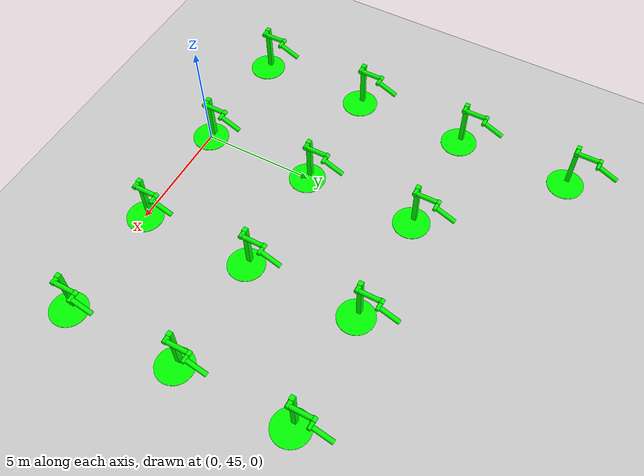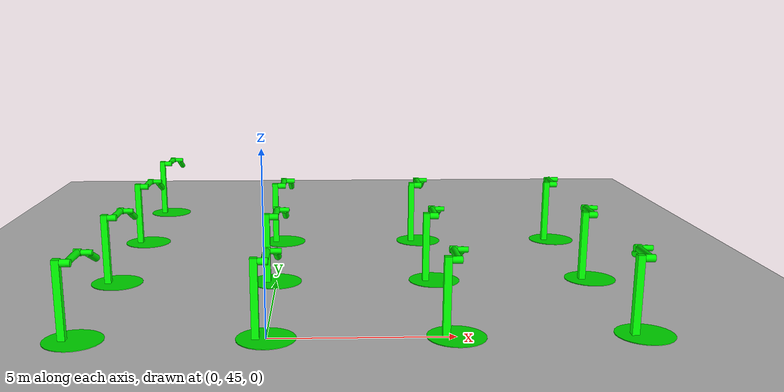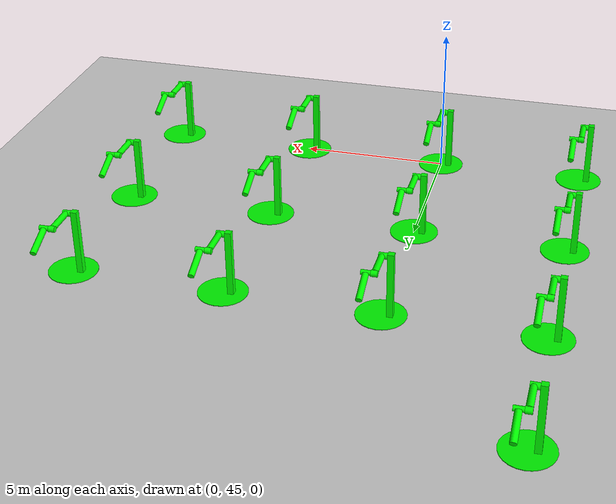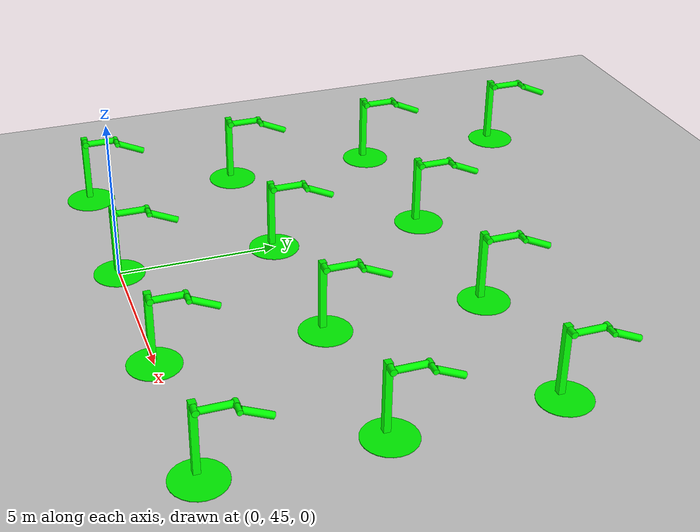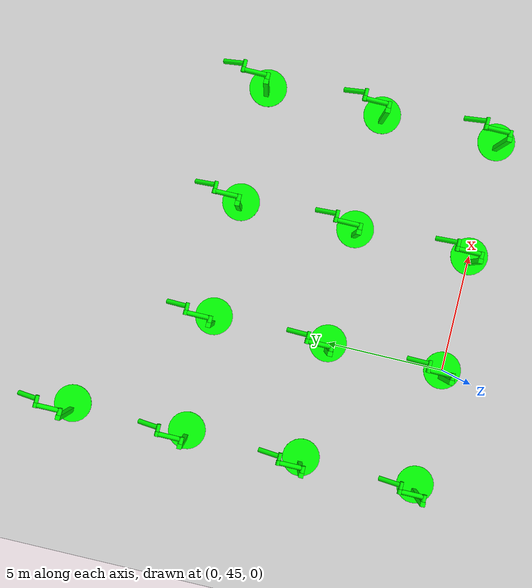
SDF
<sdf version="1.6">
 <world name="double_pendulums">
  <model name="ground_plane">
   <static>true</static>
   <link name="link">
    <collision name="collision">
     <geometry><plane><normal>0 0 1</normal><size>100 100</size></plane></geometry>
    </collision>
    <visual name="visual">
     <geometry><plane><normal>0 0 1</normal><size>100 100</size></plane></geometry>
     <material>
      <ambient>0.8 0.8 0.8 1</ambient>
      <diffuse>0.8 0.8 0.8 1</diffuse>
      <specular>0.8 0.8 0.8 1</specular>
     </material>
    </visual>
   </link>
  </model>
  <model name="dbl_pendulum_234">
   <pose>-5 45 0 0 0 0</pose>
   <link name="base">
    <inertial><mass>100</mass></inertial>
    <visual name="vis_plate_on_ground">
     <pose>0 0 0.01 0 0 0</pose>
     <geometry><cylinder><radius>0.8</radius><length>0.02</length></cylinder></geometry>
     <material><ambient>0 1 0 1</ambient><diffuse>0 1 0 1</diffuse><specular>0 1 0 1</specular></material>
    </visual>
    <visual name="vis_pole">
     <pose>-0.275 0 1.1 0 0 0</pose>
     <geometry><box><size>0.2 0.2 2.2</size></box></geometry>
     <material><ambient>0 1 0 1</ambient><diffuse>0 1 0 1</diffuse><specular>0 1 0 1</specular></material>
    </visual>
    <collision name="col_plate_on_ground">
     <pose>0 0 0.01 0 0 0</pose>
     <geometry><cylinder><radius>0.8</radius><length>0.02</length></cylinder></geometry>
    </collision>
    <collision name="col_pole">
     <pose>-0.275 0 1.1 0 0 0</pose>
     <geometry><box><size>0.2 0.2 2.2</size></box></geometry>
    </collision>
   </link>
   <link name="upper_link">
    <pose>0 0 2.1 -1.5708 0 0</pose>
    <inertial><pose>0 0 0.5 0 0 0</pose></inertial>
    <visual name="vis_upper_joint">
     <pose>-0.05 0 0 0 1.5708 0</pose>
     <geometry><cylinder><radius>0.1</radius><length>0.3</length></cylinder></geometry>
     <material><ambient>0 1 0 1</ambient><diffuse>0 1 0 1</diffuse><specular>0 1 0 1</specular></material>
    </visual>
    <visual name="vis_lower_joint">
     <pose>0 0 1.0 0 1.5708 0</pose>
     <geometry><cylinder><radius>0.1</radius><length>0.2</length></cylinder></geometry>
     <material><ambient>0 1 0 1</ambient><diffuse>0 1 0 1</diffuse><specular>0 1 0 1</specular></material>
    </visual>
    <visual name="vis_cylinder">
     <pose>0 0 0.5 0 0 0</pose>
     <geometry><cylinder><radius>0.1</radius><length>0.9</length></cylinder></geometry>
     <material><ambient>0 1 0 1</ambient><diffuse>0 1 0 1</diffuse><specular>0 1 0 1</specular></material>
    </visual>
    <collision name="col_upper_joint">
     <pose>-0.05 0 0 0 1.5708 0</pose>
     <geometry><cylinder><radius>0.1</radius><length>0.3</length></cylinder></geometry>
    </collision>
    <collision name="col_lower_joint">
     <pose>0 0 1.0 0 1.5708 0</pose>
     <geometry><cylinder><radius>0.1</radius><length>0.2</length></cylinder></geometry>
    </collision>
    <collision name="col_cylinder">
     <pose>0 0 0.5 0 0 0</pose>
     <geometry><cylinder><radius>0.1</radius><length>0.9</length></cylinder></geometry>
    </collision>
   </link>
   <link name="lower_link">
    <pose>0.25 1.0 2.1 -2 0 0</pose>
    <inertial><pose>0 0 0.5 0 0 0</pose></inertial>
    <visual name="vis_lower_joint">
     <pose>0 0 0 0 1.5708 0</pose>
     <geometry><cylinder><radius>0.08</radius><length>0.3</length></cylinder></geometry>
     <material><ambient>0 1 0 1</ambient><diffuse>0 1 0 1</diffuse><specular>0 1 0 1</specular></material>
    </visual>
    <visual name="vis_cylinder">
     <pose>0 0 0.5 0 0 0</pose>
     <geometry><cylinder><radius>0.1</radius><length>0.9</length></cylinder></geometry>
     <material><ambient>0 1 0 1</ambient><diffuse>0 1 0 1</diffuse><specular>0 1 0 1</specular></material>
    </visual>
    <collision name="col_lower_joint">
     <pose>0 0 0 0 1.5708 0</pose>
     <geometry><cylinder><radius>0.08</radius><length>0.3</length></cylinder></geometry>
    </collision>
    <collision name="col_cylinder">
     <pose>0 0 0.5 0 0 0</pose>
     <geometry><cylinder><radius>0.1</radius><length>0.9</length></cylinder></geometry>
    </collision>
   </link>
   <joint name="upper_joint" type="revolute">
    <parent>base</parent>
    <child>upper_link</child>
    <axis><xyz>1.0 0 0</xyz></axis>
   </joint>
   <joint name="lower_joint" type="revolute">
    <parent>upper_link</parent>
    <child>lower_link</child>
    <axis><xyz>1.0 0 0</xyz></axis>
   </joint>
  </model>
  <model name="dbl_pendulum_235">
   <pose>0 45 0 0 0 0</pose>
   <link name="base">
    <inertial><mass>100</mass></inertial>
    <visual name="vis_plate_on_ground">
     <pose>0 0 0.01 0 0 0</pose>
     <geometry><cylinder><radius>0.8</radius><length>0.02</length></cylinder></geometry>
     <material><ambient>0 1 0 1</ambient><diffuse>0 1 0 1</diffuse><specular>0 1 0 1</specular></material>
    </visual>
    <visual name="vis_pole">
     <pose>-0.275 0 1.1 0 0 0</pose>
     <geometry><box><size>0.2 0.2 2.2</size></box></geometry>
     <material><ambient>0 1 0 1</ambient><diffuse>0 1 0 1</diffuse><specular>0 1 0 1</specular></material>
    </visual>
    <collision name="col_plate_on_ground">
     <pose>0 0 0.01 0 0 0</pose>
     <geometry><cylinder><radius>0.8</radius><length>0.02</length></cylinder></geometry>
    </collision>
    <collision name="col_pole">
     <pose>-0.275 0 1.1 0 0 0</pose>
     <geometry><box><size>0.2 0.2 2.2</size></box></geometry>
    </collision>
   </link>
   <link name="upper_link">
    <pose>0 0 2.1 -1.5708 0 0</pose>
    <inertial><pose>0 0 0.5 0 0 0</pose></inertial>
    <visual name="vis_upper_joint">
     <pose>-0.05 0 0 0 1.5708 0</pose>
     <geometry><cylinder><radius>0.1</radius><length>0.3</length></cylinder></geometry>
     <material><ambient>0 1 0 1</ambient><diffuse>0 1 0 1</diffuse><specular>0 1 0 1</specular></material>
    </visual>
    <visual name="vis_lower_joint">
     <pose>0 0 1.0 0 1.5708 0</pose>
     <geometry><cylinder><radius>0.1</radius><length>0.2</length></cylinder></geometry>
     <material><ambient>0 1 0 1</ambient><diffuse>0 1 0 1</diffuse><specular>0 1 0 1</specular></material>
    </visual>
    <visual name="vis_cylinder">
     <pose>0 0 0.5 0 0 0</pose>
     <geometry><cylinder><radius>0.1</radius><length>0.9</length></cylinder></geometry>
     <material><ambient>0 1 0 1</ambient><diffuse>0 1 0 1</diffuse><specular>0 1 0 1</specular></material>
    </visual>
    <collision name="col_upper_joint">
     <pose>-0.05 0 0 0 1.5708 0</pose>
     <geometry><cylinder><radius>0.1</radius><length>0.3</length></cylinder></geometry>
    </collision>
    <collision name="col_lower_joint">
     <pose>0 0 1.0 0 1.5708 0</pose>
     <geometry><cylinder><radius>0.1</radius><length>0.2</length></cylinder></geometry>
    </collision>
    <collision name="col_cylinder">
     <pose>0 0 0.5 0 0 0</pose>
     <geometry><cylinder><radius>0.1</radius><length>0.9</length></cylinder></geometry>
    </collision>
   </link>
   <link name="lower_link">
    <pose>0.25 1.0 2.1 -2 0 0</pose>
    <inertial><pose>0 0 0.5 0 0 0</pose></inertial>
    <visual name="vis_lower_joint">
     <pose>0 0 0 0 1.5708 0</pose>
     <geometry><cylinder><radius>0.08</radius><length>0.3</length></cylinder></geometry>
     <material><ambient>0 1 0 1</ambient><diffuse>0 1 0 1</diffuse><specular>0 1 0 1</specular></material>
    </visual>
    <visual name="vis_cylinder">
     <pose>0 0 0.5 0 0 0</pose>
     <geometry><cylinder><radius>0.1</radius><length>0.9</length></cylinder></geometry>
     <material><ambient>0 1 0 1</ambient><diffuse>0 1 0 1</diffuse><specular>0 1 0 1</specular></material>
    </visual>
    <collision name="col_lower_joint">
     <pose>0 0 0 0 1.5708 0</pose>
     <geometry><cylinder><radius>0.08</radius><length>0.3</length></cylinder></geometry>
    </collision>
    <collision name="col_cylinder">
     <pose>0 0 0.5 0 0 0</pose>
     <geometry><cylinder><radius>0.1</radius><length>0.9</length></cylinder></geometry>
    </collision>
   </link>
   <joint name="upper_joint" type="revolute">
    <parent>base</parent>
    <child>upper_link</child>
    <axis><xyz>1.0 0 0</xyz></axis>
   </joint>
   <joint name="lower_joint" type="revolute">
    <parent>upper_link</parent>
    <child>lower_link</child>
    <axis><xyz>1.0 0 0</xyz></axis>
   </joint>
  </model>
  <model name="dbl_pendulum_236">
   <pose>5 45 0 0 0 0</pose>
   <link name="base">
    <inertial><mass>100</mass></inertial>
    <visual name="vis_plate_on_ground">
     <pose>0 0 0.01 0 0 0</pose>
     <geometry><cylinder><radius>0.8</radius><length>0.02</length></cylinder></geometry>
     <material><ambient>0 1 0 1</ambient><diffuse>0 1 0 1</diffuse><specular>0 1 0 1</specular></material>
    </visual>
    <visual name="vis_pole">
     <pose>-0.275 0 1.1 0 0 0</pose>
     <geometry><box><size>0.2 0.2 2.2</size></box></geometry>
     <material><ambient>0 1 0 1</ambient><diffuse>0 1 0 1</diffuse><specular>0 1 0 1</specular></material>
    </visual>
    <collision name="col_plate_on_ground">
     <pose>0 0 0.01 0 0 0</pose>
     <geometry><cylinder><radius>0.8</radius><length>0.02</length></cylinder></geometry>
    </collision>
    <collision name="col_pole">
     <pose>-0.275 0 1.1 0 0 0</pose>
     <geometry><box><size>0.2 0.2 2.2</size></box></geometry>
    </collision>
   </link>
   <link name="upper_link">
    <pose>0 0 2.1 -1.5708 0 0</pose>
    <inertial><pose>0 0 0.5 0 0 0</pose></inertial>
    <visual name="vis_upper_joint">
     <pose>-0.05 0 0 0 1.5708 0</pose>
     <geometry><cylinder><radius>0.1</radius><length>0.3</length></cylinder></geometry>
     <material><ambient>0 1 0 1</ambient><diffuse>0 1 0 1</diffuse><specular>0 1 0 1</specular></material>
    </visual>
    <visual name="vis_lower_joint">
     <pose>0 0 1.0 0 1.5708 0</pose>
     <geometry><cylinder><radius>0.1</radius><length>0.2</length></cylinder></geometry>
     <material><ambient>0 1 0 1</ambient><diffuse>0 1 0 1</diffuse><specular>0 1 0 1</specular></material>
    </visual>
    <visual name="vis_cylinder">
     <pose>0 0 0.5 0 0 0</pose>
     <geometry><cylinder><radius>0.1</radius><length>0.9</length></cylinder></geometry>
     <material><ambient>0 1 0 1</ambient><diffuse>0 1 0 1</diffuse><specular>0 1 0 1</specular></material>
    </visual>
    <collision name="col_upper_joint">
     <pose>-0.05 0 0 0 1.5708 0</pose>
     <geometry><cylinder><radius>0.1</radius><length>0.3</length></cylinder></geometry>
    </collision>
    <collision name="col_lower_joint">
     <pose>0 0 1.0 0 1.5708 0</pose>
     <geometry><cylinder><radius>0.1</radius><length>0.2</length></cylinder></geometry>
    </collision>
    <collision name="col_cylinder">
     <pose>0 0 0.5 0 0 0</pose>
     <geometry><cylinder><radius>0.1</radius><length>0.9</length></cylinder></geometry>
    </collision>
   </link>
   <link name="lower_link">
    <pose>0.25 1.0 2.1 -2 0 0</pose>
    <inertial><pose>0 0 0.5 0 0 0</pose></inertial>
    <visual name="vis_lower_joint">
     <pose>0 0 0 0 1.5708 0</pose>
     <geometry><cylinder><radius>0.08</radius><length>0.3</length></cylinder></geometry>
     <material><ambient>0 1 0 1</ambient><diffuse>0 1 0 1</diffuse><specular>0 1 0 1</specular></material>
    </visual>
    <visual name="vis_cylinder">
     <pose>0 0 0.5 0 0 0</pose>
     <geometry><cylinder><radius>0.1</radius><length>0.9</length></cylinder></geometry>
     <material><ambient>0 1 0 1</ambient><diffuse>0 1 0 1</diffuse><specular>0 1 0 1</specular></material>
    </visual>
    <collision name="col_lower_joint">
     <pose>0 0 0 0 1.5708 0</pose>
     <geometry><cylinder><radius>0.08</radius><length>0.3</length></cylinder></geometry>
    </collision>
    <collision name="col_cylinder">
     <pose>0 0 0.5 0 0 0</pose>
     <geometry><cylinder><radius>0.1</radius><length>0.9</length></cylinder></geometry>
    </collision>
   </link>
   <joint name="upper_joint" type="revolute">
    <parent>base</parent>
    <child>upper_link</child>
    <axis><xyz>1.0 0 0</xyz></axis>
   </joint>
   <joint name="lower_joint" type="revolute">
    <parent>upper_link</parent>
    <child>lower_link</child>
    <axis><xyz>1.0 0 0</xyz></axis>
   </joint>
  </model>
  <model name="dbl_pendulum_237">
   <pose>10 45 0 0 0 0</pose>
   <link name="base">
    <inertial><mass>100</mass></inertial>
    <visual name="vis_plate_on_ground">
     <pose>0 0 0.01 0 0 0</pose>
     <geometry><cylinder><radius>0.8</radius><length>0.02</length></cylinder></geometry>
     <material><ambient>0 1 0 1</ambient><diffuse>0 1 0 1</diffuse><specular>0 1 0 1</specular></material>
    </visual>
    <visual name="vis_pole">
     <pose>-0.275 0 1.1 0 0 0</pose>
     <geometry><box><size>0.2 0.2 2.2</size></box></geometry>
     <material><ambient>0 1 0 1</ambient><diffuse>0 1 0 1</diffuse><specular>0 1 0 1</specular></material>
    </visual>
    <collision name="col_plate_on_ground">
     <pose>0 0 0.01 0 0 0</pose>
     <geometry><cylinder><radius>0.8</radius><length>0.02</length></cylinder></geometry>
    </collision>
    <collision name="col_pole">
     <pose>-0.275 0 1.1 0 0 0</pose>
     <geometry><box><size>0.2 0.2 2.2</size></box></geometry>
    </collision>
   </link>
   <link name="upper_link">
    <pose>0 0 2.1 -1.5708 0 0</pose>
    <inertial><pose>0 0 0.5 0 0 0</pose></inertial>
    <visual name="vis_upper_joint">
     <pose>-0.05 0 0 0 1.5708 0</pose>
     <geometry><cylinder><radius>0.1</radius><length>0.3</length></cylinder></geometry>
     <material><ambient>0 1 0 1</ambient><diffuse>0 1 0 1</diffuse><specular>0 1 0 1</specular></material>
    </visual>
    <visual name="vis_lower_joint">
     <pose>0 0 1.0 0 1.5708 0</pose>
     <geometry><cylinder><radius>0.1</radius><length>0.2</length></cylinder></geometry>
     <material><ambient>0 1 0 1</ambient><diffuse>0 1 0 1</diffuse><specular>0 1 0 1</specular></material>
    </visual>
    <visual name="vis_cylinder">
     <pose>0 0 0.5 0 0 0</pose>
     <geometry><cylinder><radius>0.1</radius><length>0.9</length></cylinder></geometry>
     <material><ambient>0 1 0 1</ambient><diffuse>0 1 0 1</diffuse><specular>0 1 0 1</specular></material>
    </visual>
    <collision name="col_upper_joint">
     <pose>-0.05 0 0 0 1.5708 0</pose>
     <geometry><cylinder><radius>0.1</radius><length>0.3</length></cylinder></geometry>
    </collision>
    <collision name="col_lower_joint">
     <pose>0 0 1.0 0 1.5708 0</pose>
     <geometry><cylinder><radius>0.1</radius><length>0.2</length></cylinder></geometry>
    </collision>
    <collision name="col_cylinder">
     <pose>0 0 0.5 0 0 0</pose>
     <geometry><cylinder><radius>0.1</radius><length>0.9</length></cylinder></geometry>
    </collision>
   </link>
   <link name="lower_link">
    <pose>0.25 1.0 2.1 -2 0 0</pose>
    <inertial><pose>0 0 0.5 0 0 0</pose></inertial>
    <visual name="vis_lower_joint">
     <pose>0 0 0 0 1.5708 0</pose>
     <geometry><cylinder><radius>0.08</radius><length>0.3</length></cylinder></geometry>
     <material><ambient>0 1 0 1</ambient><diffuse>0 1 0 1</diffuse><specular>0 1 0 1</specular></material>
    </visual>
    <visual name="vis_cylinder">
     <pose>0 0 0.5 0 0 0</pose>
     <geometry><cylinder><radius>0.1</radius><length>0.9</length></cylinder></geometry>
     <material><ambient>0 1 0 1</ambient><diffuse>0 1 0 1</diffuse><specular>0 1 0 1</specular></material>
    </visual>
    <collision name="col_lower_joint">
     <pose>0 0 0 0 1.5708 0</pose>
     <geometry><cylinder><radius>0.08</radius><length>0.3</length></cylinder></geometry>
    </collision>
    <collision name="col_cylinder">
     <pose>0 0 0.5 0 0 0</pose>
     <geometry><cylinder><radius>0.1</radius><length>0.9</length></cylinder></geometry>
    </collision>
   </link>
   <joint name="upper_joint" type="revolute">
    <parent>base</parent>
    <child>upper_link</child>
    <axis><xyz>1.0 0 0</xyz></axis>
   </joint>
   <joint name="lower_joint" type="revolute">
    <parent>upper_link</parent>
    <child>lower_link</child>
    <axis><xyz>1.0 0 0</xyz></axis>
   </joint>
  </model>
  <model name="dbl_pendulum_259">
   <pose>-5 50 0 0 0 0</pose>
   <link name="base">
    <inertial><mass>100</mass></inertial>
    <visual name="vis_plate_on_ground">
     <pose>0 0 0.01 0 0 0</pose>
     <geometry><cylinder><radius>0.8</radius><length>0.02</length></cylinder></geometry>
     <material><ambient>0 1 0 1</ambient><diffuse>0 1 0 1</diffuse><specular>0 1 0 1</specular></material>
    </visual>
    <visual name="vis_pole">
     <pose>-0.275 0 1.1 0 0 0</pose>
     <geometry><box><size>0.2 0.2 2.2</size></box></geometry>
     <material><ambient>0 1 0 1</ambient><diffuse>0 1 0 1</diffuse><specular>0 1 0 1</specular></material>
    </visual>
    <collision name="col_plate_on_ground">
     <pose>0 0 0.01 0 0 0</pose>
     <geometry><cylinder><radius>0.8</radius><length>0.02</length></cylinder></geometry>
    </collision>
    <collision name="col_pole">
     <pose>-0.275 0 1.1 0 0 0</pose>
     <geometry><box><size>0.2 0.2 2.2</size></box></geometry>
    </collision>
   </link>
   <link name="upper_link">
    <pose>0 0 2.1 -1.5708 0 0</pose>
    <inertial><pose>0 0 0.5 0 0 0</pose></inertial>
    <visual name="vis_upper_joint">
     <pose>-0.05 0 0 0 1.5708 0</pose>
     <geometry><cylinder><radius>0.1</radius><length>0.3</length></cylinder></geometry>
     <material><ambient>0 1 0 1</ambient><diffuse>0 1 0 1</diffuse><specular>0 1 0 1</specular></material>
    </visual>
    <visual name="vis_lower_joint">
     <pose>0 0 1.0 0 1.5708 0</pose>
     <geometry><cylinder><radius>0.1</radius><length>0.2</length></cylinder></geometry>
     <material><ambient>0 1 0 1</ambient><diffuse>0 1 0 1</diffuse><specular>0 1 0 1</specular></material>
    </visual>
    <visual name="vis_cylinder">
     <pose>0 0 0.5 0 0 0</pose>
     <geometry><cylinder><radius>0.1</radius><length>0.9</length></cylinder></geometry>
     <material><ambient>0 1 0 1</ambient><diffuse>0 1 0 1</diffuse><specular>0 1 0 1</specular></material>
    </visual>
    <collision name="col_upper_joint">
     <pose>-0.05 0 0 0 1.5708 0</pose>
     <geometry><cylinder><radius>0.1</radius><length>0.3</length></cylinder></geometry>
    </collision>
    <collision name="col_lower_joint">
     <pose>0 0 1.0 0 1.5708 0</pose>
     <geometry><cylinder><radius>0.1</radius><length>0.2</length></cylinder></geometry>
    </collision>
    <collision name="col_cylinder">
     <pose>0 0 0.5 0 0 0</pose>
     <geometry><cylinder><radius>0.1</radius><length>0.9</length></cylinder></geometry>
    </collision>
   </link>
   <link name="lower_link">
    <pose>0.25 1.0 2.1 -2 0 0</pose>
    <inertial><pose>0 0 0.5 0 0 0</pose></inertial>
    <visual name="vis_lower_joint">
     <pose>0 0 0 0 1.5708 0</pose>
     <geometry><cylinder><radius>0.08</radius><length>0.3</length></cylinder></geometry>
     <material><ambient>0 1 0 1</ambient><diffuse>0 1 0 1</diffuse><specular>0 1 0 1</specular></material>
    </visual>
    <visual name="vis_cylinder">
     <pose>0 0 0.5 0 0 0</pose>
     <geometry><cylinder><radius>0.1</radius><length>0.9</length></cylinder></geometry>
     <material><ambient>0 1 0 1</ambient><diffuse>0 1 0 1</diffuse><specular>0 1 0 1</specular></material>
    </visual>
    <collision name="col_lower_joint">
     <pose>0 0 0 0 1.5708 0</pose>
     <geometry><cylinder><radius>0.08</radius><length>0.3</length></cylinder></geometry>
    </collision>
    <collision name="col_cylinder">
     <pose>0 0 0.5 0 0 0</pose>
     <geometry><cylinder><radius>0.1</radius><length>0.9</length></cylinder></geometry>
    </collision>
   </link>
   <joint name="upper_joint" type="revolute">
    <parent>base</parent>
    <child>upper_link</child>
    <axis><xyz>1.0 0 0</xyz></axis>
   </joint>
   <joint name="lower_joint" type="revolute">
    <parent>upper_link</parent>
    <child>lower_link</child>
    <axis><xyz>1.0 0 0</xyz></axis>
   </joint>
  </model>
  <model name="dbl_pendulum_260">
   <pose>0 50 0 0 0 0</pose>
   <link name="base">
    <inertial><mass>100</mass></inertial>
    <visual name="vis_plate_on_ground">
     <pose>0 0 0.01 0 0 0</pose>
     <geometry><cylinder><radius>0.8</radius><length>0.02</length></cylinder></geometry>
     <material><ambient>0 1 0 1</ambient><diffuse>0 1 0 1</diffuse><specular>0 1 0 1</specular></material>
    </visual>
    <visual name="vis_pole">
     <pose>-0.275 0 1.1 0 0 0</pose>
     <geometry><box><size>0.2 0.2 2.2</size></box></geometry>
     <material><ambient>0 1 0 1</ambient><diffuse>0 1 0 1</diffuse><specular>0 1 0 1</specular></material>
    </visual>
    <collision name="col_plate_on_ground">
     <pose>0 0 0.01 0 0 0</pose>
     <geometry><cylinder><radius>0.8</radius><length>0.02</length></cylinder></geometry>
    </collision>
    <collision name="col_pole">
     <pose>-0.275 0 1.1 0 0 0</pose>
     <geometry><box><size>0.2 0.2 2.2</size></box></geometry>
    </collision>
   </link>
   <link name="upper_link">
    <pose>0 0 2.1 -1.5708 0 0</pose>
    <inertial><pose>0 0 0.5 0 0 0</pose></inertial>
    <visual name="vis_upper_joint">
     <pose>-0.05 0 0 0 1.5708 0</pose>
     <geometry><cylinder><radius>0.1</radius><length>0.3</length></cylinder></geometry>
     <material><ambient>0 1 0 1</ambient><diffuse>0 1 0 1</diffuse><specular>0 1 0 1</specular></material>
    </visual>
    <visual name="vis_lower_joint">
     <pose>0 0 1.0 0 1.5708 0</pose>
     <geometry><cylinder><radius>0.1</radius><length>0.2</length></cylinder></geometry>
     <material><ambient>0 1 0 1</ambient><diffuse>0 1 0 1</diffuse><specular>0 1 0 1</specular></material>
    </visual>
    <visual name="vis_cylinder">
     <pose>0 0 0.5 0 0 0</pose>
     <geometry><cylinder><radius>0.1</radius><length>0.9</length></cylinder></geometry>
     <material><ambient>0 1 0 1</ambient><diffuse>0 1 0 1</diffuse><specular>0 1 0 1</specular></material>
    </visual>
    <collision name="col_upper_joint">
     <pose>-0.05 0 0 0 1.5708 0</pose>
     <geometry><cylinder><radius>0.1</radius><length>0.3</length></cylinder></geometry>
    </collision>
    <collision name="col_lower_joint">
     <pose>0 0 1.0 0 1.5708 0</pose>
     <geometry><cylinder><radius>0.1</radius><length>0.2</length></cylinder></geometry>
    </collision>
    <collision name="col_cylinder">
     <pose>0 0 0.5 0 0 0</pose>
     <geometry><cylinder><radius>0.1</radius><length>0.9</length></cylinder></geometry>
    </collision>
   </link>
   <link name="lower_link">
    <pose>0.25 1.0 2.1 -2 0 0</pose>
    <inertial><pose>0 0 0.5 0 0 0</pose></inertial>
    <visual name="vis_lower_joint">
     <pose>0 0 0 0 1.5708 0</pose>
     <geometry><cylinder><radius>0.08</radius><length>0.3</length></cylinder></geometry>
     <material><ambient>0 1 0 1</ambient><diffuse>0 1 0 1</diffuse><specular>0 1 0 1</specular></material>
    </visual>
    <visual name="vis_cylinder">
     <pose>0 0 0.5 0 0 0</pose>
     <geometry><cylinder><radius>0.1</radius><length>0.9</length></cylinder></geometry>
     <material><ambient>0 1 0 1</ambient><diffuse>0 1 0 1</diffuse><specular>0 1 0 1</specular></material>
    </visual>
    <collision name="col_lower_joint">
     <pose>0 0 0 0 1.5708 0</pose>
     <geometry><cylinder><radius>0.08</radius><length>0.3</length></cylinder></geometry>
    </collision>
    <collision name="col_cylinder">
     <pose>0 0 0.5 0 0 0</pose>
     <geometry><cylinder><radius>0.1</radius><length>0.9</length></cylinder></geometry>
    </collision>
   </link>
   <joint name="upper_joint" type="revolute">
    <parent>base</parent>
    <child>upper_link</child>
    <axis><xyz>1.0 0 0</xyz></axis>
   </joint>
   <joint name="lower_joint" type="revolute">
    <parent>upper_link</parent>
    <child>lower_link</child>
    <axis><xyz>1.0 0 0</xyz></axis>
   </joint>
  </model>
  <model name="dbl_pendulum_261">
   <pose>5 50 0 0 0 0</pose>
   <link name="base">
    <inertial><mass>100</mass></inertial>
    <visual name="vis_plate_on_ground">
     <pose>0 0 0.01 0 0 0</pose>
     <geometry><cylinder><radius>0.8</radius><length>0.02</length></cylinder></geometry>
     <material><ambient>0 1 0 1</ambient><diffuse>0 1 0 1</diffuse><specular>0 1 0 1</specular></material>
    </visual>
    <visual name="vis_pole">
     <pose>-0.275 0 1.1 0 0 0</pose>
     <geometry><box><size>0.2 0.2 2.2</size></box></geometry>
     <material><ambient>0 1 0 1</ambient><diffuse>0 1 0 1</diffuse><specular>0 1 0 1</specular></material>
    </visual>
    <collision name="col_plate_on_ground">
     <pose>0 0 0.01 0 0 0</pose>
     <geometry><cylinder><radius>0.8</radius><length>0.02</length></cylinder></geometry>
    </collision>
    <collision name="col_pole">
     <pose>-0.275 0 1.1 0 0 0</pose>
     <geometry><box><size>0.2 0.2 2.2</size></box></geometry>
    </collision>
   </link>
   <link name="upper_link">
    <pose>0 0 2.1 -1.5708 0 0</pose>
    <inertial><pose>0 0 0.5 0 0 0</pose></inertial>
    <visual name="vis_upper_joint">
     <pose>-0.05 0 0 0 1.5708 0</pose>
     <geometry><cylinder><radius>0.1</radius><length>0.3</length></cylinder></geometry>
     <material><ambient>0 1 0 1</ambient><diffuse>0 1 0 1</diffuse><specular>0 1 0 1</specular></material>
    </visual>
    <visual name="vis_lower_joint">
     <pose>0 0 1.0 0 1.5708 0</pose>
     <geometry><cylinder><radius>0.1</radius><length>0.2</length></cylinder></geometry>
     <material><ambient>0 1 0 1</ambient><diffuse>0 1 0 1</diffuse><specular>0 1 0 1</specular></material>
    </visual>
    <visual name="vis_cylinder">
     <pose>0 0 0.5 0 0 0</pose>
     <geometry><cylinder><radius>0.1</radius><length>0.9</length></cylinder></geometry>
     <material><ambient>0 1 0 1</ambient><diffuse>0 1 0 1</diffuse><specular>0 1 0 1</specular></material>
    </visual>
    <collision name="col_upper_joint">
     <pose>-0.05 0 0 0 1.5708 0</pose>
     <geometry><cylinder><radius>0.1</radius><length>0.3</length></cylinder></geometry>
    </collision>
    <collision name="col_lower_joint">
     <pose>0 0 1.0 0 1.5708 0</pose>
     <geometry><cylinder><radius>0.1</radius><length>0.2</length></cylinder></geometry>
    </collision>
    <collision name="col_cylinder">
     <pose>0 0 0.5 0 0 0</pose>
     <geometry><cylinder><radius>0.1</radius><length>0.9</length></cylinder></geometry>
    </collision>
   </link>
   <link name="lower_link">
    <pose>0.25 1.0 2.1 -2 0 0</pose>
    <inertial><pose>0 0 0.5 0 0 0</pose></inertial>
    <visual name="vis_lower_joint">
     <pose>0 0 0 0 1.5708 0</pose>
     <geometry><cylinder><radius>0.08</radius><length>0.3</length></cylinder></geometry>
     <material><ambient>0 1 0 1</ambient><diffuse>0 1 0 1</diffuse><specular>0 1 0 1</specular></material>
    </visual>
    <visual name="vis_cylinder">
     <pose>0 0 0.5 0 0 0</pose>
     <geometry><cylinder><radius>0.1</radius><length>0.9</length></cylinder></geometry>
     <material><ambient>0 1 0 1</ambient><diffuse>0 1 0 1</diffuse><specular>0 1 0 1</specular></material>
    </visual>
    <collision name="col_lower_joint">
     <pose>0 0 0 0 1.5708 0</pose>
     <geometry><cylinder><radius>0.08</radius><length>0.3</length></cylinder></geometry>
    </collision>
    <collision name="col_cylinder">
     <pose>0 0 0.5 0 0 0</pose>
     <geometry><cylinder><radius>0.1</radius><length>0.9</length></cylinder></geometry>
    </collision>
   </link>
   <joint name="upper_joint" type="revolute">
    <parent>base</parent>
    <child>upper_link</child>
    <axis><xyz>1.0 0 0</xyz></axis>
   </joint>
   <joint name="lower_joint" type="revolute">
    <parent>upper_link</parent>
    <child>lower_link</child>
    <axis><xyz>1.0 0 0</xyz></axis>
   </joint>
  </model>
  <model name="dbl_pendulum_262">
   <pose>10 50 0 0 0 0</pose>
   <link name="base">
    <inertial><mass>100</mass></inertial>
    <visual name="vis_plate_on_ground">
     <pose>0 0 0.01 0 0 0</pose>
     <geometry><cylinder><radius>0.8</radius><length>0.02</length></cylinder></geometry>
     <material><ambient>0 1 0 1</ambient><diffuse>0 1 0 1</diffuse><specular>0 1 0 1</specular></material>
    </visual>
    <visual name="vis_pole">
     <pose>-0.275 0 1.1 0 0 0</pose>
     <geometry><box><size>0.2 0.2 2.2</size></box></geometry>
     <material><ambient>0 1 0 1</ambient><diffuse>0 1 0 1</diffuse><specular>0 1 0 1</specular></material>
    </visual>
    <collision name="col_plate_on_ground">
     <pose>0 0 0.01 0 0 0</pose>
     <geometry><cylinder><radius>0.8</radius><length>0.02</length></cylinder></geometry>
    </collision>
    <collision name="col_pole">
     <pose>-0.275 0 1.1 0 0 0</pose>
     <geometry><box><size>0.2 0.2 2.2</size></box></geometry>
    </collision>
   </link>
   <link name="upper_link">
    <pose>0 0 2.1 -1.5708 0 0</pose>
    <inertial><pose>0 0 0.5 0 0 0</pose></inertial>
    <visual name="vis_upper_joint">
     <pose>-0.05 0 0 0 1.5708 0</pose>
     <geometry><cylinder><radius>0.1</radius><length>0.3</length></cylinder></geometry>
     <material><ambient>0 1 0 1</ambient><diffuse>0 1 0 1</diffuse><specular>0 1 0 1</specular></material>
    </visual>
    <visual name="vis_lower_joint">
     <pose>0 0 1.0 0 1.5708 0</pose>
     <geometry><cylinder><radius>0.1</radius><length>0.2</length></cylinder></geometry>
     <material><ambient>0 1 0 1</ambient><diffuse>0 1 0 1</diffuse><specular>0 1 0 1</specular></material>
    </visual>
    <visual name="vis_cylinder">
     <pose>0 0 0.5 0 0 0</pose>
     <geometry><cylinder><radius>0.1</radius><length>0.9</length></cylinder></geometry>
     <material><ambient>0 1 0 1</ambient><diffuse>0 1 0 1</diffuse><specular>0 1 0 1</specular></material>
    </visual>
    <collision name="col_upper_joint">
     <pose>-0.05 0 0 0 1.5708 0</pose>
     <geometry><cylinder><radius>0.1</radius><length>0.3</length></cylinder></geometry>
    </collision>
    <collision name="col_lower_joint">
     <pose>0 0 1.0 0 1.5708 0</pose>
     <geometry><cylinder><radius>0.1</radius><length>0.2</length></cylinder></geometry>
    </collision>
    <collision name="col_cylinder">
     <pose>0 0 0.5 0 0 0</pose>
     <geometry><cylinder><radius>0.1</radius><length>0.9</length></cylinder></geometry>
    </collision>
   </link>
   <link name="lower_link">
    <pose>0.25 1.0 2.1 -2 0 0</pose>
    <inertial><pose>0 0 0.5 0 0 0</pose></inertial>
    <visual name="vis_lower_joint">
     <pose>0 0 0 0 1.5708 0</pose>
     <geometry><cylinder><radius>0.08</radius><length>0.3</length></cylinder></geometry>
     <material><ambient>0 1 0 1</ambient><diffuse>0 1 0 1</diffuse><specular>0 1 0 1</specular></material>
    </visual>
    <visual name="vis_cylinder">
     <pose>0 0 0.5 0 0 0</pose>
     <geometry><cylinder><radius>0.1</radius><length>0.9</length></cylinder></geometry>
     <material><ambient>0 1 0 1</ambient><diffuse>0 1 0 1</diffuse><specular>0 1 0 1</specular></material>
    </visual>
    <collision name="col_lower_joint">
     <pose>0 0 0 0 1.5708 0</pose>
     <geometry><cylinder><radius>0.08</radius><length>0.3</length></cylinder></geometry>
    </collision>
    <collision name="col_cylinder">
     <pose>0 0 0.5 0 0 0</pose>
     <geometry><cylinder><radius>0.1</radius><length>0.9</length></cylinder></geometry>
    </collision>
   </link>
   <joint name="upper_joint" type="revolute">
    <parent>base</parent>
    <child>upper_link</child>
    <axis><xyz>1.0 0 0</xyz></axis>
   </joint>
   <joint name="lower_joint" type="revolute">
    <parent>upper_link</parent>
    <child>lower_link</child>
    <axis><xyz>1.0 0 0</xyz></axis>
   </joint>
  </model>
  <model name="dbl_pendulum_284">
   <pose>-5 55 0 0 0 0</pose>
   <link name="base">
    <inertial><mass>100</mass></inertial>
    <visual name="vis_plate_on_ground">
     <pose>0 0 0.01 0 0 0</pose>
     <geometry><cylinder><radius>0.8</radius><length>0.02</length></cylinder></geometry>
     <material><ambient>0 1 0 1</ambient><diffuse>0 1 0 1</diffuse><specular>0 1 0 1</specular></material>
    </visual>
    <visual name="vis_pole">
     <pose>-0.275 0 1.1 0 0 0</pose>
     <geometry><box><size>0.2 0.2 2.2</size></box></geometry>
     <material><ambient>0 1 0 1</ambient><diffuse>0 1 0 1</diffuse><specular>0 1 0 1</specular></material>
    </visual>
    <collision name="col_plate_on_ground">
     <pose>0 0 0.01 0 0 0</pose>
     <geometry><cylinder><radius>0.8</radius><length>0.02</length></cylinder></geometry>
    </collision>
    <collision name="col_pole">
     <pose>-0.275 0 1.1 0 0 0</pose>
     <geometry><box><size>0.2 0.2 2.2</size></box></geometry>
    </collision>
   </link>
   <link name="upper_link">
    <pose>0 0 2.1 -1.5708 0 0</pose>
    <inertial><pose>0 0 0.5 0 0 0</pose></inertial>
    <visual name="vis_upper_joint">
     <pose>-0.05 0 0 0 1.5708 0</pose>
     <geometry><cylinder><radius>0.1</radius><length>0.3</length></cylinder></geometry>
     <material><ambient>0 1 0 1</ambient><diffuse>0 1 0 1</diffuse><specular>0 1 0 1</specular></material>
    </visual>
    <visual name="vis_lower_joint">
     <pose>0 0 1.0 0 1.5708 0</pose>
     <geometry><cylinder><radius>0.1</radius><length>0.2</length></cylinder></geometry>
     <material><ambient>0 1 0 1</ambient><diffuse>0 1 0 1</diffuse><specular>0 1 0 1</specular></material>
    </visual>
    <visual name="vis_cylinder">
     <pose>0 0 0.5 0 0 0</pose>
     <geometry><cylinder><radius>0.1</radius><length>0.9</length></cylinder></geometry>
     <material><ambient>0 1 0 1</ambient><diffuse>0 1 0 1</diffuse><specular>0 1 0 1</specular></material>
    </visual>
    <collision name="col_upper_joint">
     <pose>-0.05 0 0 0 1.5708 0</pose>
     <geometry><cylinder><radius>0.1</radius><length>0.3</length></cylinder></geometry>
    </collision>
    <collision name="col_lower_joint">
     <pose>0 0 1.0 0 1.5708 0</pose>
     <geometry><cylinder><radius>0.1</radius><length>0.2</length></cylinder></geometry>
    </collision>
    <collision name="col_cylinder">
     <pose>0 0 0.5 0 0 0</pose>
     <geometry><cylinder><radius>0.1</radius><length>0.9</length></cylinder></geometry>
    </collision>
   </link>
   <link name="lower_link">
    <pose>0.25 1.0 2.1 -2 0 0</pose>
    <inertial><pose>0 0 0.5 0 0 0</pose></inertial>
    <visual name="vis_lower_joint">
     <pose>0 0 0 0 1.5708 0</pose>
     <geometry><cylinder><radius>0.08</radius><length>0.3</length></cylinder></geometry>
     <material><ambient>0 1 0 1</ambient><diffuse>0 1 0 1</diffuse><specular>0 1 0 1</specular></material>
    </visual>
    <visual name="vis_cylinder">
     <pose>0 0 0.5 0 0 0</pose>
     <geometry><cylinder><radius>0.1</radius><length>0.9</length></cylinder></geometry>
     <material><ambient>0 1 0 1</ambient><diffuse>0 1 0 1</diffuse><specular>0 1 0 1</specular></material>
    </visual>
    <collision name="col_lower_joint">
     <pose>0 0 0 0 1.5708 0</pose>
     <geometry><cylinder><radius>0.08</radius><length>0.3</length></cylinder></geometry>
    </collision>
    <collision name="col_cylinder">
     <pose>0 0 0.5 0 0 0</pose>
     <geometry><cylinder><radius>0.1</radius><length>0.9</length></cylinder></geometry>
    </collision>
   </link>
   <joint name="upper_joint" type="revolute">
    <parent>base</parent>
    <child>upper_link</child>
    <axis><xyz>1.0 0 0</xyz></axis>
   </joint>
   <joint name="lower_joint" type="revolute">
    <parent>upper_link</parent>
    <child>lower_link</child>
    <axis><xyz>1.0 0 0</xyz></axis>
   </joint>
  </model>
  <model name="dbl_pendulum_285">
   <pose>0 55 0 0 0 0</pose>
   <link name="base">
    <inertial><mass>100</mass></inertial>
    <visual name="vis_plate_on_ground">
     <pose>0 0 0.01 0 0 0</pose>
     <geometry><cylinder><radius>0.8</radius><length>0.02</length></cylinder></geometry>
     <material><ambient>0 1 0 1</ambient><diffuse>0 1 0 1</diffuse><specular>0 1 0 1</specular></material>
    </visual>
    <visual name="vis_pole">
     <pose>-0.275 0 1.1 0 0 0</pose>
     <geometry><box><size>0.2 0.2 2.2</size></box></geometry>
     <material><ambient>0 1 0 1</ambient><diffuse>0 1 0 1</diffuse><specular>0 1 0 1</specular></material>
    </visual>
    <collision name="col_plate_on_ground">
     <pose>0 0 0.01 0 0 0</pose>
     <geometry><cylinder><radius>0.8</radius><length>0.02</length></cylinder></geometry>
    </collision>
    <collision name="col_pole">
     <pose>-0.275 0 1.1 0 0 0</pose>
     <geometry><box><size>0.2 0.2 2.2</size></box></geometry>
    </collision>
   </link>
   <link name="upper_link">
    <pose>0 0 2.1 -1.5708 0 0</pose>
    <inertial><pose>0 0 0.5 0 0 0</pose></inertial>
    <visual name="vis_upper_joint">
     <pose>-0.05 0 0 0 1.5708 0</pose>
     <geometry><cylinder><radius>0.1</radius><length>0.3</length></cylinder></geometry>
     <material><ambient>0 1 0 1</ambient><diffuse>0 1 0 1</diffuse><specular>0 1 0 1</specular></material>
    </visual>
    <visual name="vis_lower_joint">
     <pose>0 0 1.0 0 1.5708 0</pose>
     <geometry><cylinder><radius>0.1</radius><length>0.2</length></cylinder></geometry>
     <material><ambient>0 1 0 1</ambient><diffuse>0 1 0 1</diffuse><specular>0 1 0 1</specular></material>
    </visual>
    <visual name="vis_cylinder">
     <pose>0 0 0.5 0 0 0</pose>
     <geometry><cylinder><radius>0.1</radius><length>0.9</length></cylinder></geometry>
     <material><ambient>0 1 0 1</ambient><diffuse>0 1 0 1</diffuse><specular>0 1 0 1</specular></material>
    </visual>
    <collision name="col_upper_joint">
     <pose>-0.05 0 0 0 1.5708 0</pose>
     <geometry><cylinder><radius>0.1</radius><length>0.3</length></cylinder></geometry>
    </collision>
    <collision name="col_lower_joint">
     <pose>0 0 1.0 0 1.5708 0</pose>
     <geometry><cylinder><radius>0.1</radius><length>0.2</length></cylinder></geometry>
    </collision>
    <collision name="col_cylinder">
     <pose>0 0 0.5 0 0 0</pose>
     <geometry><cylinder><radius>0.1</radius><length>0.9</length></cylinder></geometry>
    </collision>
   </link>
   <link name="lower_link">
    <pose>0.25 1.0 2.1 -2 0 0</pose>
    <inertial><pose>0 0 0.5 0 0 0</pose></inertial>
    <visual name="vis_lower_joint">
     <pose>0 0 0 0 1.5708 0</pose>
     <geometry><cylinder><radius>0.08</radius><length>0.3</length></cylinder></geometry>
     <material><ambient>0 1 0 1</ambient><diffuse>0 1 0 1</diffuse><specular>0 1 0 1</specular></material>
    </visual>
    <visual name="vis_cylinder">
     <pose>0 0 0.5 0 0 0</pose>
     <geometry><cylinder><radius>0.1</radius><length>0.9</length></cylinder></geometry>
     <material><ambient>0 1 0 1</ambient><diffuse>0 1 0 1</diffuse><specular>0 1 0 1</specular></material>
    </visual>
    <collision name="col_lower_joint">
     <pose>0 0 0 0 1.5708 0</pose>
     <geometry><cylinder><radius>0.08</radius><length>0.3</length></cylinder></geometry>
    </collision>
    <collision name="col_cylinder">
     <pose>0 0 0.5 0 0 0</pose>
     <geometry><cylinder><radius>0.1</radius><length>0.9</length></cylinder></geometry>
    </collision>
   </link>
   <joint name="upper_joint" type="revolute">
    <parent>base</parent>
    <child>upper_link</child>
    <axis><xyz>1.0 0 0</xyz></axis>
   </joint>
   <joint name="lower_joint" type="revolute">
    <parent>upper_link</parent>
    <child>lower_link</child>
    <axis><xyz>1.0 0 0</xyz></axis>
   </joint>
  </model>
  <model name="dbl_pendulum_286">
   <pose>5 55 0 0 0 0</pose>
   <link name="base">
    <inertial><mass>100</mass></inertial>
    <visual name="vis_plate_on_ground">
     <pose>0 0 0.01 0 0 0</pose>
     <geometry><cylinder><radius>0.8</radius><length>0.02</length></cylinder></geometry>
     <material><ambient>0 1 0 1</ambient><diffuse>0 1 0 1</diffuse><specular>0 1 0 1</specular></material>
    </visual>
    <visual name="vis_pole">
     <pose>-0.275 0 1.1 0 0 0</pose>
     <geometry><box><size>0.2 0.2 2.2</size></box></geometry>
     <material><ambient>0 1 0 1</ambient><diffuse>0 1 0 1</diffuse><specular>0 1 0 1</specular></material>
    </visual>
    <collision name="col_plate_on_ground">
     <pose>0 0 0.01 0 0 0</pose>
     <geometry><cylinder><radius>0.8</radius><length>0.02</length></cylinder></geometry>
    </collision>
    <collision name="col_pole">
     <pose>-0.275 0 1.1 0 0 0</pose>
     <geometry><box><size>0.2 0.2 2.2</size></box></geometry>
    </collision>
   </link>
   <link name="upper_link">
    <pose>0 0 2.1 -1.5708 0 0</pose>
    <inertial><pose>0 0 0.5 0 0 0</pose></inertial>
    <visual name="vis_upper_joint">
     <pose>-0.05 0 0 0 1.5708 0</pose>
     <geometry><cylinder><radius>0.1</radius><length>0.3</length></cylinder></geometry>
     <material><ambient>0 1 0 1</ambient><diffuse>0 1 0 1</diffuse><specular>0 1 0 1</specular></material>
    </visual>
    <visual name="vis_lower_joint">
     <pose>0 0 1.0 0 1.5708 0</pose>
     <geometry><cylinder><radius>0.1</radius><length>0.2</length></cylinder></geometry>
     <material><ambient>0 1 0 1</ambient><diffuse>0 1 0 1</diffuse><specular>0 1 0 1</specular></material>
    </visual>
    <visual name="vis_cylinder">
     <pose>0 0 0.5 0 0 0</pose>
     <geometry><cylinder><radius>0.1</radius><length>0.9</length></cylinder></geometry>
     <material><ambient>0 1 0 1</ambient><diffuse>0 1 0 1</diffuse><specular>0 1 0 1</specular></material>
    </visual>
    <collision name="col_upper_joint">
     <pose>-0.05 0 0 0 1.5708 0</pose>
     <geometry><cylinder><radius>0.1</radius><length>0.3</length></cylinder></geometry>
    </collision>
    <collision name="col_lower_joint">
     <pose>0 0 1.0 0 1.5708 0</pose>
     <geometry><cylinder><radius>0.1</radius><length>0.2</length></cylinder></geometry>
    </collision>
    <collision name="col_cylinder">
     <pose>0 0 0.5 0 0 0</pose>
     <geometry><cylinder><radius>0.1</radius><length>0.9</length></cylinder></geometry>
    </collision>
   </link>
   <link name="lower_link">
    <pose>0.25 1.0 2.1 -2 0 0</pose>
    <inertial><pose>0 0 0.5 0 0 0</pose></inertial>
    <visual name="vis_lower_joint">
     <pose>0 0 0 0 1.5708 0</pose>
     <geometry><cylinder><radius>0.08</radius><length>0.3</length></cylinder></geometry>
     <material><ambient>0 1 0 1</ambient><diffuse>0 1 0 1</diffuse><specular>0 1 0 1</specular></material>
    </visual>
    <visual name="vis_cylinder">
     <pose>0 0 0.5 0 0 0</pose>
     <geometry><cylinder><radius>0.1</radius><length>0.9</length></cylinder></geometry>
     <material><ambient>0 1 0 1</ambient><diffuse>0 1 0 1</diffuse><specular>0 1 0 1</specular></material>
    </visual>
    <collision name="col_lower_joint">
     <pose>0 0 0 0 1.5708 0</pose>
     <geometry><cylinder><radius>0.08</radius><length>0.3</length></cylinder></geometry>
    </collision>
    <collision name="col_cylinder">
     <pose>0 0 0.5 0 0 0</pose>
     <geometry><cylinder><radius>0.1</radius><length>0.9</length></cylinder></geometry>
    </collision>
   </link>
   <joint name="upper_joint" type="revolute">
    <parent>base</parent>
    <child>upper_link</child>
    <axis><xyz>1.0 0 0</xyz></axis>
   </joint>
   <joint name="lower_joint" type="revolute">
    <parent>upper_link</parent>
    <child>lower_link</child>
    <axis><xyz>1.0 0 0</xyz></axis>
   </joint>
  </model>
  <model name="dbl_pendulum_287">
   <pose>10 55 0 0 0 0</pose>
   <link name="base">
    <inertial><mass>100</mass></inertial>
    <visual name="vis_plate_on_ground">
     <pose>0 0 0.01 0 0 0</pose>
     <geometry><cylinder><radius>0.8</radius><length>0.02</length></cylinder></geometry>
     <material><ambient>0 1 0 1</ambient><diffuse>0 1 0 1</diffuse><specular>0 1 0 1</specular></material>
    </visual>
    <visual name="vis_pole">
     <pose>-0.275 0 1.1 0 0 0</pose>
     <geometry><box><size>0.2 0.2 2.2</size></box></geometry>
     <material><ambient>0 1 0 1</ambient><diffuse>0 1 0 1</diffuse><specular>0 1 0 1</specular></material>
    </visual>
    <collision name="col_plate_on_ground">
     <pose>0 0 0.01 0 0 0</pose>
     <geometry><cylinder><radius>0.8</radius><length>0.02</length></cylinder></geometry>
    </collision>
    <collision name="col_pole">
     <pose>-0.275 0 1.1 0 0 0</pose>
     <geometry><box><size>0.2 0.2 2.2</size></box></geometry>
    </collision>
   </link>
   <link name="upper_link">
    <pose>0 0 2.1 -1.5708 0 0</pose>
    <inertial><pose>0 0 0.5 0 0 0</pose></inertial>
    <visual name="vis_upper_joint">
     <pose>-0.05 0 0 0 1.5708 0</pose>
     <geometry><cylinder><radius>0.1</radius><length>0.3</length></cylinder></geometry>
     <material><ambient>0 1 0 1</ambient><diffuse>0 1 0 1</diffuse><specular>0 1 0 1</specular></material>
    </visual>
    <visual name="vis_lower_joint">
     <pose>0 0 1.0 0 1.5708 0</pose>
     <geometry><cylinder><radius>0.1</radius><length>0.2</length></cylinder></geometry>
     <material><ambient>0 1 0 1</ambient><diffuse>0 1 0 1</diffuse><specular>0 1 0 1</specular></material>
    </visual>
    <visual name="vis_cylinder">
     <pose>0 0 0.5 0 0 0</pose>
     <geometry><cylinder><radius>0.1</radius><length>0.9</length></cylinder></geometry>
     <material><ambient>0 1 0 1</ambient><diffuse>0 1 0 1</diffuse><specular>0 1 0 1</specular></material>
    </visual>
    <collision name="col_upper_joint">
     <pose>-0.05 0 0 0 1.5708 0</pose>
     <geometry><cylinder><radius>0.1</radius><length>0.3</length></cylinder></geometry>
    </collision>
    <collision name="col_lower_joint">
     <pose>0 0 1.0 0 1.5708 0</pose>
     <geometry><cylinder><radius>0.1</radius><length>0.2</length></cylinder></geometry>
    </collision>
    <collision name="col_cylinder">
     <pose>0 0 0.5 0 0 0</pose>
     <geometry><cylinder><radius>0.1</radius><length>0.9</length></cylinder></geometry>
    </collision>
   </link>
   <link name="lower_link">
    <pose>0.25 1.0 2.1 -2 0 0</pose>
    <inertial><pose>0 0 0.5 0 0 0</pose></inertial>
    <visual name="vis_lower_joint">
     <pose>0 0 0 0 1.5708 0</pose>
     <geometry><cylinder><radius>0.08</radius><length>0.3</length></cylinder></geometry>
     <material><ambient>0 1 0 1</ambient><diffuse>0 1 0 1</diffuse><specular>0 1 0 1</specular></material>
    </visual>
    <visual name="vis_cylinder">
     <pose>0 0 0.5 0 0 0</pose>
     <geometry><cylinder><radius>0.1</radius><length>0.9</length></cylinder></geometry>
     <material><ambient>0 1 0 1</ambient><diffuse>0 1 0 1</diffuse><specular>0 1 0 1</specular></material>
    </visual>
    <collision name="col_lower_joint">
     <pose>0 0 0 0 1.5708 0</pose>
     <geometry><cylinder><radius>0.08</radius><length>0.3</length></cylinder></geometry>
    </collision>
    <collision name="col_cylinder">
     <pose>0 0 0.5 0 0 0</pose>
     <geometry><cylinder><radius>0.1</radius><length>0.9</length></cylinder></geometry>
    </collision>
   </link>
   <joint name="upper_joint" type="revolute">
    <parent>base</parent>
    <child>upper_link</child>
    <axis><xyz>1.0 0 0</xyz></axis>
   </joint>
   <joint name="lower_joint" type="revolute">
    <parent>upper_link</parent>
    <child>lower_link</child>
    <axis><xyz>1.0 0 0</xyz></axis>
   </joint>
  </model>
  <model name="dbl_pendulum_309">
   <pose>-5 60 0 0 0 0</pose>
   <link name="base">
    <inertial><mass>100</mass></inertial>
    <visual name="vis_plate_on_ground">
     <pose>0 0 0.01 0 0 0</pose>
     <geometry><cylinder><radius>0.8</radius><length>0.02</length></cylinder></geometry>
     <material><ambient>0 1 0 1</ambient><diffuse>0 1 0 1</diffuse><specular>0 1 0 1</specular></material>
    </visual>
    <visual name="vis_pole">
     <pose>-0.275 0 1.1 0 0 0</pose>
     <geometry><box><size>0.2 0.2 2.2</size></box></geometry>
     <material><ambient>0 1 0 1</ambient><diffuse>0 1 0 1</diffuse><specular>0 1 0 1</specular></material>
    </visual>
    <collision name="col_plate_on_ground">
     <pose>0 0 0.01 0 0 0</pose>
     <geometry><cylinder><radius>0.8</radius><length>0.02</length></cylinder></geometry>
    </collision>
    <collision name="col_pole">
     <pose>-0.275 0 1.1 0 0 0</pose>
     <geometry><box><size>0.2 0.2 2.2</size></box></geometry>
    </collision>
   </link>
   <link name="upper_link">
    <pose>0 0 2.1 -1.5708 0 0</pose>
    <inertial><pose>0 0 0.5 0 0 0</pose></inertial>
    <visual name="vis_upper_joint">
     <pose>-0.05 0 0 0 1.5708 0</pose>
     <geometry><cylinder><radius>0.1</radius><length>0.3</length></cylinder></geometry>
     <material><ambient>0 1 0 1</ambient><diffuse>0 1 0 1</diffuse><specular>0 1 0 1</specular></material>
    </visual>
    <visual name="vis_lower_joint">
     <pose>0 0 1.0 0 1.5708 0</pose>
     <geometry><cylinder><radius>0.1</radius><length>0.2</length></cylinder></geometry>
     <material><ambient>0 1 0 1</ambient><diffuse>0 1 0 1</diffuse><specular>0 1 0 1</specular></material>
    </visual>
    <visual name="vis_cylinder">
     <pose>0 0 0.5 0 0 0</pose>
     <geometry><cylinder><radius>0.1</radius><length>0.9</length></cylinder></geometry>
     <material><ambient>0 1 0 1</ambient><diffuse>0 1 0 1</diffuse><specular>0 1 0 1</specular></material>
    </visual>
    <collision name="col_upper_joint">
     <pose>-0.05 0 0 0 1.5708 0</pose>
     <geometry><cylinder><radius>0.1</radius><length>0.3</length></cylinder></geometry>
    </collision>
    <collision name="col_lower_joint">
     <pose>0 0 1.0 0 1.5708 0</pose>
     <geometry><cylinder><radius>0.1</radius><length>0.2</length></cylinder></geometry>
    </collision>
    <collision name="col_cylinder">
     <pose>0 0 0.5 0 0 0</pose>
     <geometry><cylinder><radius>0.1</radius><length>0.9</length></cylinder></geometry>
    </collision>
   </link>
   <link name="lower_link">
    <pose>0.25 1.0 2.1 -2 0 0</pose>
    <inertial><pose>0 0 0.5 0 0 0</pose></inertial>
    <visual name="vis_lower_joint">
     <pose>0 0 0 0 1.5708 0</pose>
     <geometry><cylinder><radius>0.08</radius><length>0.3</length></cylinder></geometry>
     <material><ambient>0 1 0 1</ambient><diffuse>0 1 0 1</diffuse><specular>0 1 0 1</specular></material>
    </visual>
    <visual name="vis_cylinder">
     <pose>0 0 0.5 0 0 0</pose>
     <geometry><cylinder><radius>0.1</radius><length>0.9</length></cylinder></geometry>
     <material><ambient>0 1 0 1</ambient><diffuse>0 1 0 1</diffuse><specular>0 1 0 1</specular></material>
    </visual>
    <collision name="col_lower_joint">
     <pose>0 0 0 0 1.5708 0</pose>
     <geometry><cylinder><radius>0.08</radius><length>0.3</length></cylinder></geometry>
    </collision>
    <collision name="col_cylinder">
     <pose>0 0 0.5 0 0 0</pose>
     <geometry><cylinder><radius>0.1</radius><length>0.9</length></cylinder></geometry>
    </collision>
   </link>
   <joint name="upper_joint" type="revolute">
    <parent>base</parent>
    <child>upper_link</child>
    <axis><xyz>1.0 0 0</xyz></axis>
   </joint>
   <joint name="lower_joint" type="revolute">
    <parent>upper_link</parent>
    <child>lower_link</child>
    <axis><xyz>1.0 0 0</xyz></axis>
   </joint>
  </model>
 </world>
</sdf>
